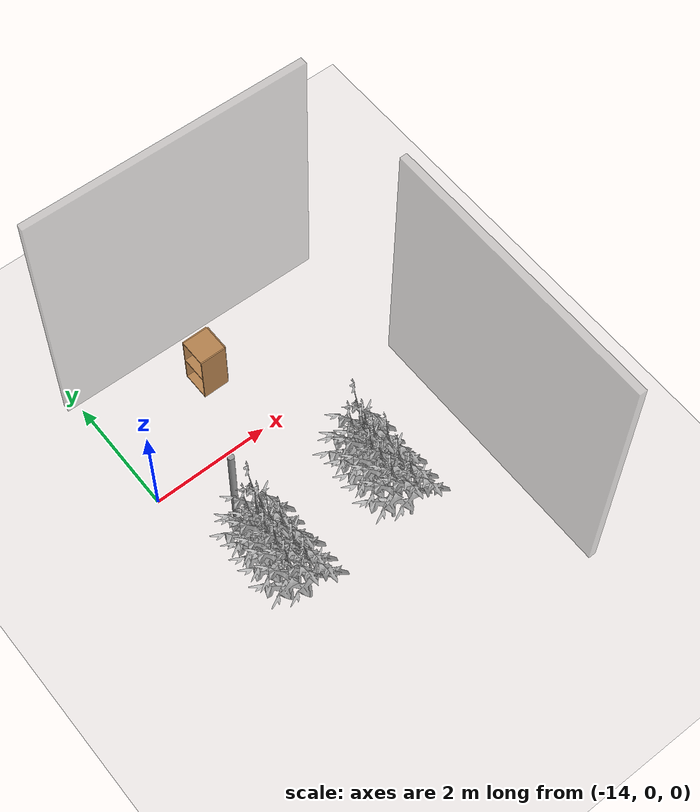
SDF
<sdf version="1.6">
 <world name="default">
  <model name="ground_plane">
   <static>1</static>
   <link name="link">
    <collision name="collision">
     <geometry><plane><normal>0 0 1</normal><size>100 100</size></plane></geometry>
     <surface>
      <contact><collide_bitmask>65535</collide_bitmask></contact>
      <friction><ode><mu>100</mu><mu2>50</mu2></ode></friction>
     </surface>
    </collision>
    <visual name="visual">
     <cast_shadows>0</cast_shadows>
     <geometry><plane><normal>0 0 1</normal><size>100 100</size></plane></geometry>
     <material>
      <script><uri>file://media/materials/scripts/gazebo.material</uri><name>Gazebo/Grey</name></script>
     </material>
    </visual>
   </link>
  </model>
  <model name="Front_Plant_1_11">
   <model name="tomato_plant_medium">
    <static>1</static>
    <link name="link">
     <collision name="collision">
      <pose>0 0 0 1.5708 -0 0</pose>
      <geometry><mesh><scale>0.5 0.5 0.5</scale><uri>model://stick/meshes/stick.dae</uri></mesh></geometry>
     </collision>
     <visual name="visual">
      <geometry>
       <mesh><scale>5e-06 5e-06 6e-06</scale><uri>model://tomato_plant_medium/meshes/tomato-plant.dae</uri></mesh>
      </geometry>
     </visual>
    </link>
    <pose>0.087453 -0.595994 0.012396 0 -0 0</pose>
   </model>
   <model name="tomato_plant_medium_0">
    <static>1</static>
    <link name="link">
     <collision name="collision">
      <pose>0 0 0 1.5708 -0 0</pose>
      <geometry><mesh><scale>0.5 0.5 0.5</scale><uri>model://stick/meshes/stick.dae</uri></mesh></geometry>
     </collision>
     <visual name="visual">
      <geometry>
       <mesh><scale>5e-06 5e-06 6e-06</scale><uri>model://tomato_plant_medium/meshes/tomato-plant.dae</uri></mesh>
      </geometry>
     </visual>
    </link>
    <pose>-0.086166 -0.251822 0.012396 0 -0 0</pose>
   </model>
   <model name="tomato_plant_medium_1">
    <static>1</static>
    <link name="link">
     <collision name="collision">
      <pose>0 0 0 1.5708 -0 0</pose>
      <geometry><mesh><scale>0.5 0.5 0.5</scale><uri>model://stick/meshes/stick.dae</uri></mesh></geometry>
     </collision>
     <visual name="visual">
      <geometry>
       <mesh><scale>5e-06 5e-06 6e-06</scale><uri>model://tomato_plant_medium/meshes/tomato-plant.dae</uri></mesh>
      </geometry>
     </visual>
    </link>
    <pose>0.080199 0.118127 0.012396 0 -0 0</pose>
   </model>
   <model name="tomato_plant_small">
    <static>1</static>
    <link name="link">
     <collision name="collision">
      <pose>0 0 0 1.5708 -0 0</pose>
      <geometry><mesh><scale>0.5 0.45 0.5</scale><uri>model://stick/meshes/stick.dae</uri></mesh></geometry>
     </collision>
     <visual name="visual">
      <geometry>
       <mesh><scale>5e-06 5e-06 5e-06</scale><uri>model://tomato_plant_small/meshes/tomato-plant.dae</uri></mesh>
      </geometry>
     </visual>
    </link>
    <pose>0.099683 -1.12011 0.012396 0 -0 0</pose>
   </model>
   <model name="tomato_plant_small_0">
    <static>1</static>
    <link name="link">
     <collision name="collision">
      <pose>0 0 0 1.5708 -0 0</pose>
      <geometry><mesh><scale>0.5 0.45 0.5</scale><uri>model://stick/meshes/stick.dae</uri></mesh></geometry>
     </collision>
     <visual name="visual">
      <geometry>
       <mesh><scale>5e-06 5e-06 5e-06</scale><uri>model://tomato_plant_small/meshes/tomato-plant.dae</uri></mesh>
      </geometry>
     </visual>
    </link>
    <pose>-0.138771 -0.983982 0.012396 0 -0 0</pose>
   </model>
   <model name="tomato_plant_small_1">
    <static>1</static>
    <link name="link">
     <collision name="collision">
      <pose>0 0 0 1.5708 -0 0</pose>
      <geometry><mesh><scale>0.5 0.45 0.5</scale><uri>model://stick/meshes/stick.dae</uri></mesh></geometry>
     </collision>
     <visual name="visual">
      <geometry>
       <mesh><scale>5e-06 5e-06 5e-06</scale><uri>model://tomato_plant_small/meshes/tomato-plant.dae</uri></mesh>
      </geometry>
     </visual>
    </link>
    <pose>0.101334 -0.848814 0.012396 0 -0 0</pose>
   </model>
   <model name="tomato_plant_small_2">
    <static>1</static>
    <link name="link">
     <collision name="collision">
      <pose>0 0 0 1.5708 -0 0</pose>
      <geometry><mesh><scale>0.5 0.45 0.5</scale><uri>model://stick/meshes/stick.dae</uri></mesh></geometry>
     </collision>
     <visual name="visual">
      <geometry>
       <mesh><scale>5e-06 5e-06 5e-06</scale><uri>model://tomato_plant_small/meshes/tomato-plant.dae</uri></mesh>
      </geometry>
     </visual>
    </link>
    <pose>-0.103369 -0.683189 0.012396 0 -0 0</pose>
   </model>
   <model name="tomato_plant_small_3">
    <static>1</static>
    <link name="link">
     <collision name="collision">
      <pose>0 0 0 1.5708 -0 0</pose>
      <geometry><mesh><scale>0.5 0.45 0.5</scale><uri>model://stick/meshes/stick.dae</uri></mesh></geometry>
     </collision>
     <visual name="visual">
      <geometry>
       <mesh><scale>5e-06 5e-06 5e-06</scale><uri>model://tomato_plant_small/meshes/tomato-plant.dae</uri></mesh>
      </geometry>
     </visual>
    </link>
    <pose>-0.104381 -0.464811 0.012396 0 -0 0</pose>
   </model>
   <model name="tomato_plant_small_4">
    <static>1</static>
    <link name="link">
     <collision name="collision">
      <pose>0 0 0 1.5708 -0 0</pose>
      <geometry><mesh><scale>0.5 0.45 0.5</scale><uri>model://stick/meshes/stick.dae</uri></mesh></geometry>
     </collision>
     <visual name="visual">
      <geometry>
       <mesh><scale>5e-06 5e-06 5e-06</scale><uri>model://tomato_plant_small/meshes/tomato-plant.dae</uri></mesh>
      </geometry>
     </visual>
    </link>
    <pose>0.055604 -0.336879 0.012396 0 -0 0</pose>
   </model>
   <model name="tomato_plant_small_5">
    <static>1</static>
    <link name="link">
     <collision name="collision">
      <pose>0 0 0 1.5708 -0 0</pose>
      <geometry><mesh><scale>0.5 0.45 0.5</scale><uri>model://stick/meshes/stick.dae</uri></mesh></geometry>
     </collision>
     <visual name="visual">
      <geometry>
       <mesh><scale>5e-06 5e-06 5e-06</scale><uri>model://tomato_plant_small/meshes/tomato-plant.dae</uri></mesh>
      </geometry>
     </visual>
    </link>
    <pose>0.085059 -0.092572 0.012396 0 -0 0</pose>
   </model>
   <model name="tomato_plant_small_6">
    <static>1</static>
    <link name="link">
     <collision name="collision">
      <pose>0 0 0 1.5708 -0 0</pose>
      <geometry><mesh><scale>0.5 0.45 0.5</scale><uri>model://stick/meshes/stick.dae</uri></mesh></geometry>
     </collision>
     <visual name="visual">
      <geometry>
       <mesh><scale>5e-06 5e-06 5e-06</scale><uri>model://tomato_plant_small/meshes/tomato-plant.dae</uri></mesh>
      </geometry>
     </visual>
    </link>
    <pose>-0.096345 0.008888 0.012396 0 -0 0</pose>
   </model>
   <static>0</static>
   <pose>-13.2257 -1.53283 0 0 -0 0</pose>
  </model>
  <model name="wall_0_clone_3">
   <link name="link">
    <inertial>
     <mass>2.87883</mass>
     <inertia><ixx>11.0771</ixx><ixy>0</ixy><ixz>0</ixz><iyy>5.80298</iyy><iyz>0</iyz><izz>5.28163</izz></inertia>
    </inertial>
    <pose>0 -0.040293 1.94803 0 -0 0</pose>
    <visual name="visual">
     <geometry><box><size>0.12484 4.69043 4.91663</size></box></geometry>
     <material>
      <script><name>Gazebo/Grey</name><uri>file://media/materials/scripts/gazebo.material</uri></script>
      <ambient>0.3 0.3 0.3 1</ambient>
      <diffuse>0.7 0.7 0.7 1</diffuse>
      <specular>0.01 0.01 0.01 1</specular>
      <emissive>0 0 0 1</emissive>
      <shader type="vertex"><normal_map>__default__</normal_map></shader>
     </material>
     <transparency>0.5</transparency>
    </visual>
    <collision name="collision">
     <geometry><box><size>0.12484 4.69043 4.91663</size></box></geometry>
     <surface>
      <friction>
       <ode><mu>1</mu><mu2>1</mu2><fdir1>0 0 0</fdir1><slip1>0</slip1><slip2>0</slip2></ode>
       <torsional>
        <coefficient>1</coefficient>
        <patch_radius>0</patch_radius>
        <surface_radius>0</surface_radius>
        <use_patch_radius>1</use_patch_radius>
        <ode><slip>0</slip></ode>
       </torsional>
      </friction>
      <bounce><restitution_coefficient>0</restitution_coefficient><threshold>1e+06</threshold></bounce>
      <contact>
       <collide_without_contact>0</collide_without_contact>
       <collide_without_contact_bitmask>1</collide_without_contact_bitmask>
       <collide_bitmask>1</collide_bitmask>
       <ode>
        <soft_cfm>0</soft_cfm>
        <soft_erp>0.2</soft_erp>
        <kp>1e+13</kp>
        <kd>1</kd>
        <max_vel>0.01</max_vel>
        <min_depth>0</min_depth>
       </ode>
       <bullet>
        <split_impulse>1</split_impulse>
        <split_impulse_penetration_threshold>-0.01</split_impulse_penetration_threshold>
        <soft_cfm>0</soft_cfm>
        <soft_erp>0.2</soft_erp>
        <kp>1e+13</kp>
        <kd>1</kd>
       </bullet>
      </contact>
     </surface>
    </collision>
   </link>
   <static>0</static>
   <pose>-9.46361 -2.33615 0.520285 0 0 -0.001011</pose>
  </model>
  <model name="wall_0_clone_0_clone_clone">
   <link name="link">
    <inertial>
     <mass>2.87883</mass>
     <inertia><ixx>11.0771</ixx><ixy>0</ixy><ixz>0</ixz><iyy>5.80298</iyy><iyz>0</iyz><izz>5.28163</izz></inertia>
    </inertial>
    <pose>0 -0.040293 1.94803 0 -0 0</pose>
    <visual name="visual">
     <geometry><box><size>0.12484 4.69043 4.91663</size></box></geometry>
     <material>
      <script><name>Gazebo/Grey</name><uri>file://media/materials/scripts/gazebo.material</uri></script>
      <ambient>0.3 0.3 0.3 1</ambient>
      <diffuse>0.7 0.7 0.7 1</diffuse>
      <specular>0.01 0.01 0.01 1</specular>
      <emissive>0 0 0 1</emissive>
      <shader type="vertex"><normal_map>__default__</normal_map></shader>
     </material>
     <transparency>0.5</transparency>
    </visual>
    <collision name="collision">
     <geometry><box><size>0.12484 4.69043 4.91663</size></box></geometry>
     <surface>
      <friction>
       <ode><mu>1</mu><mu2>1</mu2><fdir1>0 0 0</fdir1><slip1>0</slip1><slip2>0</slip2></ode>
       <torsional>
        <coefficient>1</coefficient>
        <patch_radius>0</patch_radius>
        <surface_radius>0</surface_radius>
        <use_patch_radius>1</use_patch_radius>
        <ode><slip>0</slip></ode>
       </torsional>
      </friction>
      <bounce><restitution_coefficient>0</restitution_coefficient><threshold>1e+06</threshold></bounce>
      <contact>
       <collide_without_contact>0</collide_without_contact>
       <collide_without_contact_bitmask>1</collide_without_contact_bitmask>
       <collide_bitmask>1</collide_bitmask>
       <ode>
        <soft_cfm>0</soft_cfm>
        <soft_erp>0.2</soft_erp>
        <kp>1e+13</kp>
        <kd>1</kd>
        <max_vel>0.01</max_vel>
        <min_depth>0</min_depth>
       </ode>
       <bullet>
        <split_impulse>1</split_impulse>
        <split_impulse_penetration_threshold>-0.01</split_impulse_penetration_threshold>
        <soft_cfm>0</soft_cfm>
        <soft_erp>0.2</soft_erp>
        <kp>1e+13</kp>
        <kd>1</kd>
       </bullet>
      </contact>
     </surface>
    </collision>
   </link>
   <static>0</static>
   <pose>-11.7961 2.14923 0.520285 0 1e-06 -1.58821</pose>
  </model>
  <model name="Front_Plant_1_11_clone">
   <model name="tomato_plant_medium">
    <static>1</static>
    <link name="link">
     <collision name="collision">
      <pose>0 0 0 1.5708 -0 0</pose>
      <geometry><mesh><scale>0.5 0.5 0.5</scale><uri>model://stick/meshes/stick.dae</uri></mesh></geometry>
     </collision>
     <visual name="visual">
      <geometry>
       <mesh><scale>5e-06 5e-06 6e-06</scale><uri>model://tomato_plant_medium/meshes/tomato-plant.dae</uri></mesh>
      </geometry>
     </visual>
    </link>
    <pose>0.087453 -0.595994 0.012396 0 -0 0</pose>
   </model>
   <model name="tomato_plant_medium_0">
    <static>1</static>
    <link name="link">
     <collision name="collision">
      <pose>0 0 0 1.5708 -0 0</pose>
      <geometry><mesh><scale>0.5 0.5 0.5</scale><uri>model://stick/meshes/stick.dae</uri></mesh></geometry>
     </collision>
     <visual name="visual">
      <geometry>
       <mesh><scale>5e-06 5e-06 6e-06</scale><uri>model://tomato_plant_medium/meshes/tomato-plant.dae</uri></mesh>
      </geometry>
     </visual>
    </link>
    <pose>-0.086166 -0.251822 0.012396 0 -0 0</pose>
   </model>
   <model name="tomato_plant_medium_1">
    <static>1</static>
    <link name="link">
     <collision name="collision">
      <pose>0 0 0 1.5708 -0 0</pose>
      <geometry><mesh><scale>0.5 0.5 0.5</scale><uri>model://stick/meshes/stick.dae</uri></mesh></geometry>
     </collision>
     <visual name="visual">
      <geometry>
       <mesh><scale>5e-06 5e-06 6e-06</scale><uri>model://tomato_plant_medium/meshes/tomato-plant.dae</uri></mesh>
      </geometry>
     </visual>
    </link>
    <pose>0.080199 0.118127 0.012396 0 -0 0</pose>
   </model>
   <model name="tomato_plant_small">
    <static>1</static>
    <link name="link">
     <collision name="collision">
      <pose>0 0 0 1.5708 -0 0</pose>
      <geometry><mesh><scale>0.5 0.45 0.5</scale><uri>model://stick/meshes/stick.dae</uri></mesh></geometry>
     </collision>
     <visual name="visual">
      <geometry>
       <mesh><scale>5e-06 5e-06 5e-06</scale><uri>model://tomato_plant_small/meshes/tomato-plant.dae</uri></mesh>
      </geometry>
     </visual>
    </link>
    <pose>0.099683 -1.12011 0.012396 0 -0 0</pose>
   </model>
   <model name="tomato_plant_small_0">
    <static>1</static>
    <link name="link">
     <collision name="collision">
      <pose>0 0 0 1.5708 -0 0</pose>
      <geometry><mesh><scale>0.5 0.45 0.5</scale><uri>model://stick/meshes/stick.dae</uri></mesh></geometry>
     </collision>
     <visual name="visual">
      <geometry>
       <mesh><scale>5e-06 5e-06 5e-06</scale><uri>model://tomato_plant_small/meshes/tomato-plant.dae</uri></mesh>
      </geometry>
     </visual>
    </link>
    <pose>-0.138771 -0.983982 0.012396 0 -0 0</pose>
   </model>
   <model name="tomato_plant_small_1">
    <static>1</static>
    <link name="link">
     <collision name="collision">
      <pose>0 0 0 1.5708 -0 0</pose>
      <geometry><mesh><scale>0.5 0.45 0.5</scale><uri>model://stick/meshes/stick.dae</uri></mesh></geometry>
     </collision>
     <visual name="visual">
      <geometry>
       <mesh><scale>5e-06 5e-06 5e-06</scale><uri>model://tomato_plant_small/meshes/tomato-plant.dae</uri></mesh>
      </geometry>
     </visual>
    </link>
    <pose>0.101334 -0.848814 0.012396 0 -0 0</pose>
   </model>
   <model name="tomato_plant_small_2">
    <static>1</static>
    <link name="link">
     <collision name="collision">
      <pose>0 0 0 1.5708 -0 0</pose>
      <geometry><mesh><scale>0.5 0.45 0.5</scale><uri>model://stick/meshes/stick.dae</uri></mesh></geometry>
     </collision>
     <visual name="visual">
      <geometry>
       <mesh><scale>5e-06 5e-06 5e-06</scale><uri>model://tomato_plant_small/meshes/tomato-plant.dae</uri></mesh>
      </geometry>
     </visual>
    </link>
    <pose>-0.103369 -0.683189 0.012396 0 -0 0</pose>
   </model>
   <model name="tomato_plant_small_3">
    <static>1</static>
    <link name="link">
     <collision name="collision">
      <pose>0 0 0 1.5708 -0 0</pose>
      <geometry><mesh><scale>0.5 0.45 0.5</scale><uri>model://stick/meshes/stick.dae</uri></mesh></geometry>
     </collision>
     <visual name="visual">
      <geometry>
       <mesh><scale>5e-06 5e-06 5e-06</scale><uri>model://tomato_plant_small/meshes/tomato-plant.dae</uri></mesh>
      </geometry>
     </visual>
    </link>
    <pose>-0.104381 -0.464811 0.012396 0 -0 0</pose>
   </model>
   <model name="tomato_plant_small_4">
    <static>1</static>
    <link name="link">
     <collision name="collision">
      <pose>0 0 0 1.5708 -0 0</pose>
      <geometry><mesh><scale>0.5 0.45 0.5</scale><uri>model://stick/meshes/stick.dae</uri></mesh></geometry>
     </collision>
     <visual name="visual">
      <geometry>
       <mesh><scale>5e-06 5e-06 5e-06</scale><uri>model://tomato_plant_small/meshes/tomato-plant.dae</uri></mesh>
      </geometry>
     </visual>
    </link>
    <pose>0.055604 -0.336879 0.012396 0 -0 0</pose>
   </model>
   <model name="tomato_plant_small_5">
    <static>1</static>
    <link name="link">
     <collision name="collision">
      <pose>0 0 0 1.5708 -0 0</pose>
      <geometry><mesh><scale>0.5 0.45 0.5</scale><uri>model://stick/meshes/stick.dae</uri></mesh></geometry>
     </collision>
     <visual name="visual">
      <geometry>
       <mesh><scale>5e-06 5e-06 5e-06</scale><uri>model://tomato_plant_small/meshes/tomato-plant.dae</uri></mesh>
      </geometry>
     </visual>
    </link>
    <pose>0.085059 -0.092572 0.012396 0 -0 0</pose>
   </model>
   <model name="tomato_plant_small_6">
    <static>1</static>
    <link name="link">
     <collision name="collision">
      <pose>0 0 0 1.5708 -0 0</pose>
      <geometry><mesh><scale>0.5 0.45 0.5</scale><uri>model://stick/meshes/stick.dae</uri></mesh></geometry>
     </collision>
     <visual name="visual">
      <geometry>
       <mesh><scale>5e-06 5e-06 5e-06</scale><uri>model://tomato_plant_small/meshes/tomato-plant.dae</uri></mesh>
      </geometry>
     </visual>
    </link>
    <pose>-0.096345 0.008888 0.012396 0 -0 0</pose>
   </model>
   <static>0</static>
   <pose>-11.2113 -1.42008 0 0 -0 0</pose>
  </model>
  <model name="unit_cylinder_clone">
   <pose>-13.1886 -0.886092 0.650453 2.8e-05 -1.4e-05 0.000326</pose>
   <link name="link">
    <inertial>
     <mass>1</mass>
     <inertia><ixx>0.145833</ixx><ixy>0</ixy><ixz>0</ixz><iyy>0.145833</iyy><iyz>0</iyz><izz>0.125</izz></inertia>
    </inertial>
    <collision name="collision">
     <geometry><cylinder><radius>0.0524864</radius><length>2.40756</length></cylinder></geometry>
    </collision>
    <visual name="visual">
     <geometry><cylinder><radius>0.0524864</radius><length>2.40756</length></cylinder></geometry>
     <material>
      <script><name>Gazebo/Grey</name><uri>file://media/materials/scripts/gazebo.material</uri></script>
     </material>
    </visual>
   </link>
  </model>
  <model name="cabinet">
   <static>1</static>
   <link name="cabinet_bottom_plate">
    <inertial>
     <pose>0 0 -1 0 -0 0</pose>
     <inertia><ixx>2.05</ixx><ixy>0</ixy><ixz>0</ixz><iyy>2.05</iyy><iyz>0</iyz><izz>2.05</izz></inertia>
     <mass>25</mass>
    </inertial>
    <collision name="cabinet_bottom_plate_geom">
     <pose>0 0 0.01 0 -0 0</pose>
     <geometry><box><size>0.45 0.45 0.02</size></box></geometry>
    </collision>
    <visual name="cabinet_bottom_plate_geom_visual">
     <pose>0 0 0.01 0 -0 0</pose>
     <geometry><box><size>0.45 0.45 0.02</size></box></geometry>
     <material>
      <script><uri>file://media/materials/scripts/gazebo.material</uri><name>Gazebo/Wood</name></script>
     </material>
    </visual>
    <collision name="cabinet_bottom_plate_geom_cabinet_back_plate">
     <pose>0.235 0 0.51 0 -0 0</pose>
     <geometry><box><size>0.02 0.45 1.02</size></box></geometry>
    </collision>
    <visual name="cabinet_bottom_plate_geom_cabinet_back_plate_visual">
     <pose>0.235 0 0.51 0 -0 0</pose>
     <geometry><box><size>0.02 0.45 1.02</size></box></geometry>
     <material>
      <script><uri>file://media/materials/scripts/gazebo.material</uri><name>Gazebo/Wood</name></script>
     </material>
    </visual>
    <collision name="cabinet_bottom_plate_geom_cabinet_left_plate">
     <pose>0 0.235 0.51 0 -0 0</pose>
     <geometry><box><size>0.45 0.02 1.02</size></box></geometry>
    </collision>
    <visual name="cabinet_bottom_plate_geom_cabinet_left_plate_visual">
     <pose>0 0.235 0.51 0 -0 0</pose>
     <geometry><box><size>0.45 0.02 1.02</size></box></geometry>
     <material>
      <script><uri>file://media/materials/scripts/gazebo.material</uri><name>Gazebo/Wood</name></script>
     </material>
    </visual>
    <collision name="cabinet_bottom_plate_geom_cabinet_middle_plate">
     <pose>0 0 0.51 0 -0 0</pose>
     <geometry><box><size>0.45 0.45 0.02</size></box></geometry>
    </collision>
    <visual name="cabinet_bottom_plate_geom_cabinet_middle_plate_visual">
     <pose>0 0 0.51 0 -0 0</pose>
     <geometry><box><size>0.45 0.45 0.02</size></box></geometry>
     <material>
      <script><uri>file://media/materials/scripts/gazebo.material</uri><name>Gazebo/Wood</name></script>
     </material>
    </visual>
    <collision name="cabinet_bottom_plate_geom_cabinet_right_plate">
     <pose>0 -0.235 0.51 0 -0 0</pose>
     <geometry><box><size>0.45 0.02 1.02</size></box></geometry>
    </collision>
    <visual name="cabinet_bottom_plate_geom_cabinet_right_plate_visual">
     <pose>0 -0.235 0.51 0 -0 0</pose>
     <geometry><box><size>0.45 0.02 1.02</size></box></geometry>
     <material>
      <script><uri>file://media/materials/scripts/gazebo.material</uri><name>Gazebo/Wood</name></script>
     </material>
    </visual>
    <collision name="cabinet_bottom_plate_geom_cabinet_top_plate">
     <pose>0 0 1.01 0 -0 0</pose>
     <geometry><box><size>0.45 0.45 0.02</size></box></geometry>
    </collision>
    <visual name="cabinet_bottom_plate_geom_cabinet_top_plate_visual">
     <pose>0 0 1.01 0 -0 0</pose>
     <geometry><box><size>0.45 0.45 0.02</size></box></geometry>
     <material>
      <script><uri>file://media/materials/scripts/gazebo.material</uri><name>Gazebo/Wood</name></script>
     </material>
    </visual>
   </link>
   <pose>-12.1391 1.26184 0 0 -0 0</pose>
  </model>
 </world>
</sdf>
